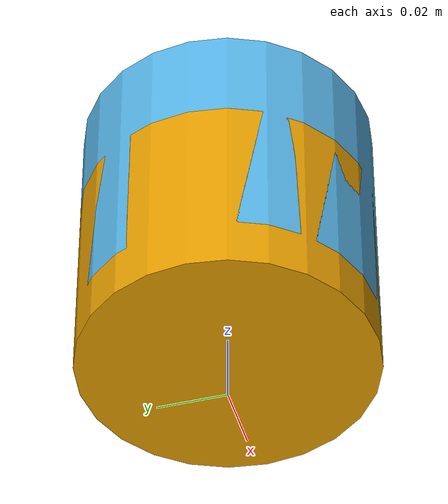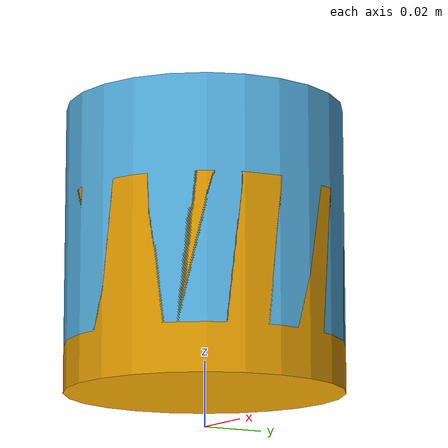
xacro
<?xml version="1.0"?>
<robot xmlns:xacro="http://ros.org/wiki/xacro">
    <!-- propiedades del lidar -->
    <xacro:property name="lid_radius" value="0.04267" />
    <xacro:property name="lid_length" value="0.05867" />

    <!-- descripcion de los links del lidar-->
    <link name="lidar_base">
        <collision>
            <origin xyz="0 0 ${0.5 * lid_length + 0.01}" rpy="0 0 0"/>
            <geometry>
                <cylinder radius="${lid_radius}" length="${lid_length}"/>
            </geometry>
        </collision>

        <visual>
            <origin xyz="0 0 ${0.5 * lid_length + 0.01}" rpy="0 0 0"/>
            <geometry>
                <cylinder radius="${lid_radius}" length="${lid_length}"/>
            </geometry>
        </visual>

        <inertial>
            <origin xyz="0 0 ${0.5 * lid_length + 0.01}" rpy="0 0 0"/>
            <mass value="1.2"/>
            <inertia
                ixx="0.001087473" ixy="0.0" ixz="0.0"
                iyy="0.001087473" iyz="0.0"
                izz="0.001092437"/>
        </inertial>
    </link>

    <link name="lidar_top">
        <collision>
            <origin xyz="0 0 ${1.5 * lid_length + 0.01}" rpy="0 0 0"/>
            <geometry>
                <cylinder radius="${lid_radius}" length="0.07357"/>
            </geometry>
        </collision>

        <visual>
            <origin xyz="0 0 ${1.5 * lid_length + 0.01}" rpy="0 0 0"/>
            <geometry>
                <cylinder radius="${lid_radius}" length="0.07357"/>
            </geometry>
        </visual>

        <inertial>
            <origin xyz="0 0 ${1.5 * lid_length + 0.01}" rpy="0 0 0"/>
            <mass value="0.1"/>
            <inertia
                ixx="0.000090623" ixy="0.0" ixz="0.0"
                iyy="0.000090623" iyz="0.0"
                izz="0.000091036"/>
        </inertial>
    </link>

    <!-- descripcion de los joints del gripper-->
     <joint name="lidar_joint" type="revolute">
        <parent link="lidar_base"/>
        <child link="lidar_top"/>
        <origin xyz="0 0 -0.036785" rpy="0 0 0"/>
            <limit lower="-10000000000000000000" upper="1000000000000000000" effort="10" velocity="3"/>
            <axis xyz="0 0 1"/>
     </joint>

    <gazebo reference="lidar_top">
    <sensor type="ray" name="laz">
       <always_on>true</always_on>
       <pose>0 0 0.117 1.5707 0 0</pose>
       <visualize>true</visualize>
       <update_rate>30</update_rate>
       <ray>
         <scan>
           <horizontal>
             <samples>32</samples>
             <resolution>1</resolution>
             <min_angle>-0.53529248</min_angle>
             <max_angle>0.18622663</max_angle>
           </horizontal>
           <vertical>
             <samples>1</samples>
             <resolution>1</resolution>
             <min_angle>-0.15</min_angle>
             <max_angle>0.15</max_angle>
           </vertical>
         </scan>
          <range>
           <min>0.5</min>
           <max>30</max>
           <resolution>0.02</resolution>
         </range>
      <noise>
        <type>gaussian</type>
        <mean>0.0</mean>
        <stddev>0.01</stddev>
      </noise>
      </ray>
   </sensor>
  </gazebo>

</robot>
